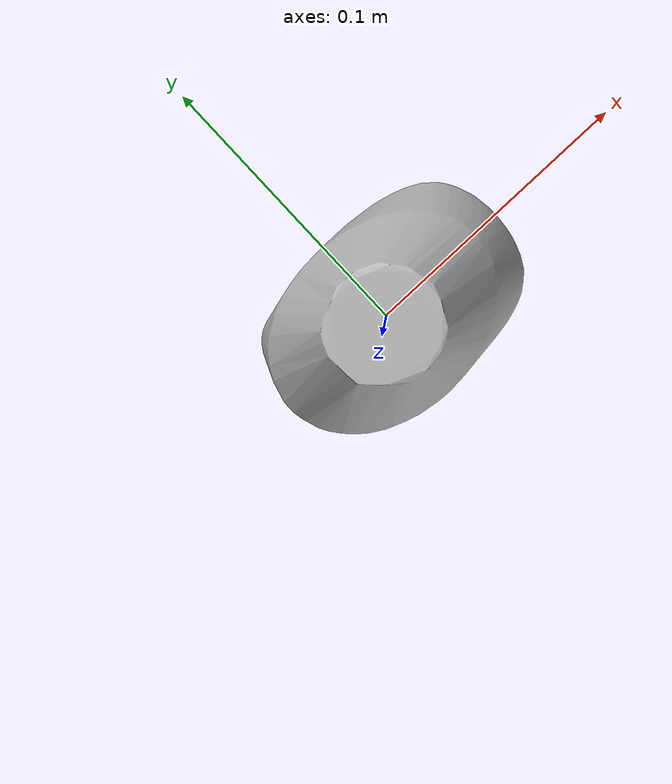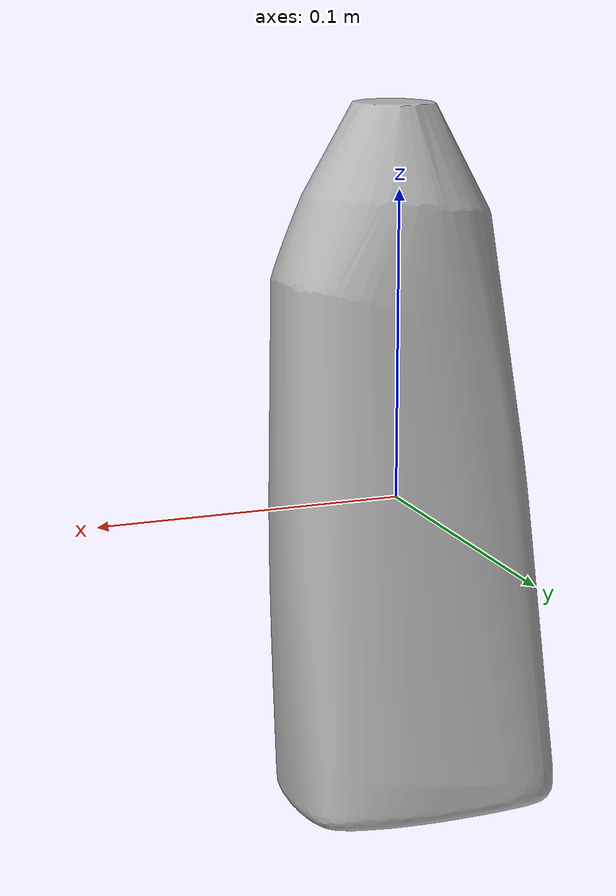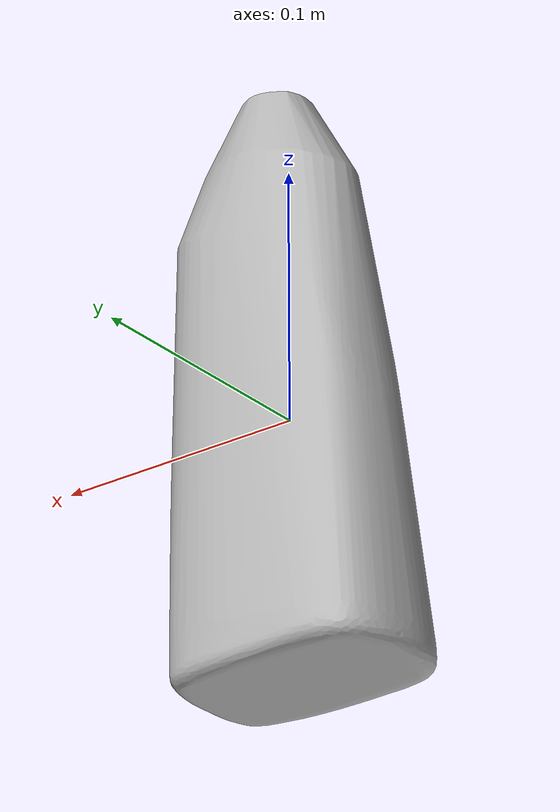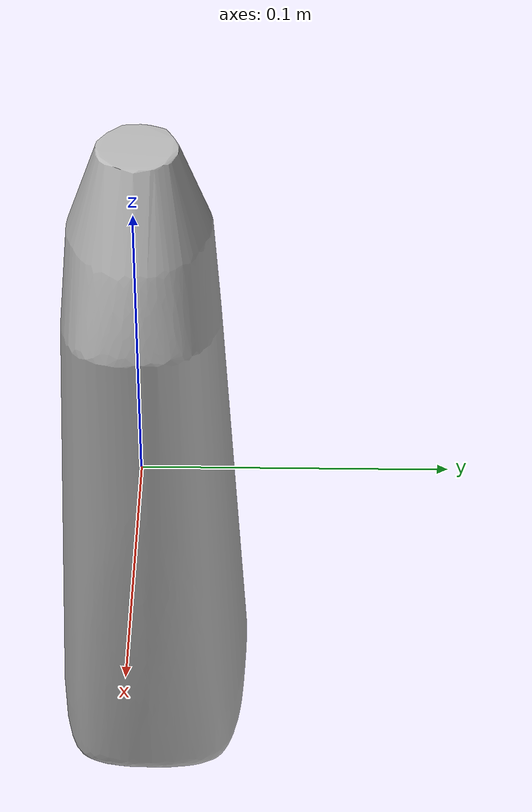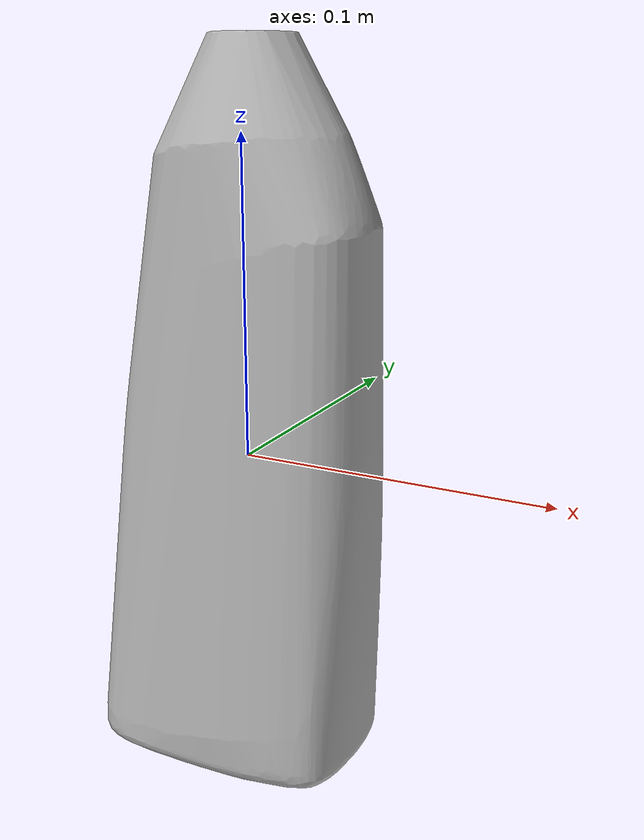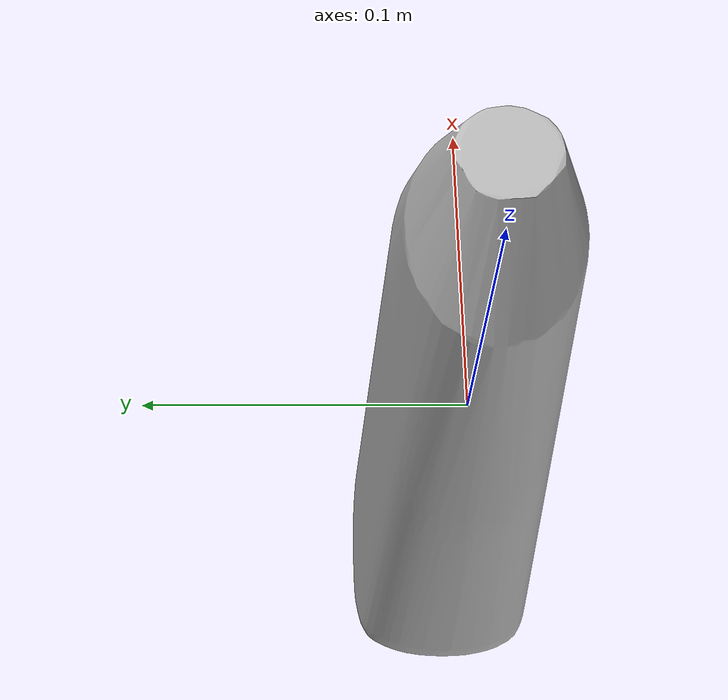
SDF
<sdf version="1.4">
  <model name="bleach_cleanser">
    <static>false</static>
    <link name="link">
      <inertial>
        <pose>-0.00047566429517203644 0.0023074982121131203 -0.011863992823570113 -3.0710585897328038 0.00011235314993717245 1.5603910307121844</pose>
        <mass>1.1</mass>
        <inertia>
          <ixx>0.001381591246944398</ixx>
          <ixy>-2.738495978054539e-22</ixy>
          <ixz>1.627419279934661e-20</ixz>
          <iyy>0.006178821659115613</iyy>
          <iyz>-4.502275336900622e-22</iyz>
          <izz>0.006719845129022663</izz>
        </inertia>
      </inertial>
      <collision name="collision">
        <pose>-0.0 0.0 -0.0 -1.5708 0.00 0.0</pose>
        <geometry>
          <mesh>
            <uri>model://bleach_cleanser/meshes/bleach_cleanser.stl</uri>
            <scale>0.92 0.92 0.92</scale>
	        </mesh>
        </geometry>
        <surface>

      </surface>
      </collision>
      <visual name="visual">
        <geometry>
          <mesh>
            <uri>model://bleach_cleanser/meshes/textured_simple.obj</uri>
            <scale>0.9 0.9 0.9</scale>
	        </mesh>
        </geometry>
        <material>
          <script>
            <uri>model://bleach_cleanser/bleach_cleanser.material</uri>
            <name>bleach_cleanser</name>
          </script>
        </material>
      </visual>
    </link>
  </model>
</sdf>
